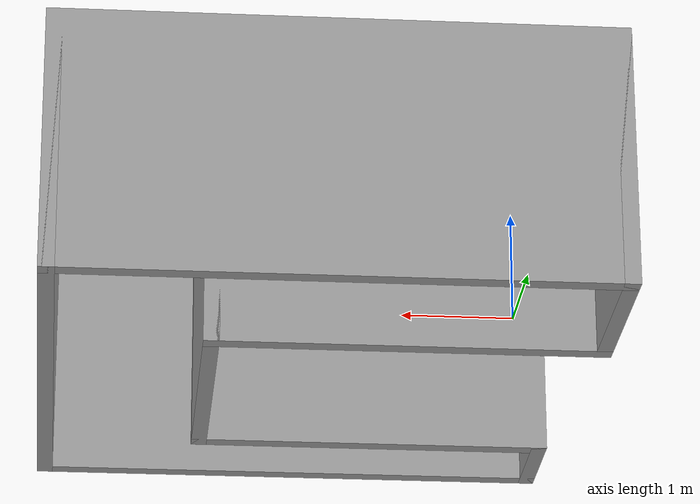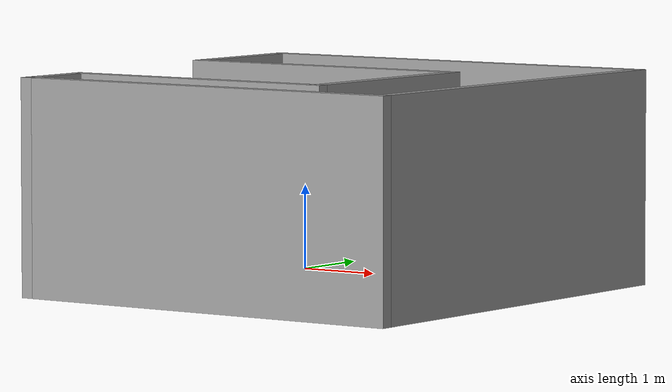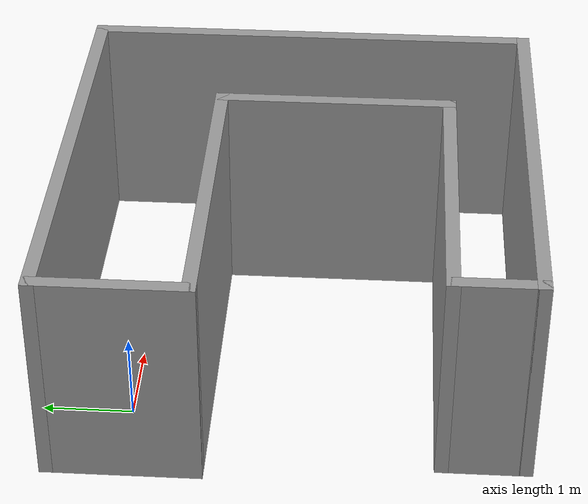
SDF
<?xml version='1.0'?>
<sdf version='1.6'>
  <model name='Untitled1.world'>
    <pose frame=''>1.60746 -1.74983 0 0 -0 0</pose>
    <link name='Wall_21'>
      <collision name='Wall_21_Collision'>
        <geometry>
          <box>
            <size>1.75 0.15 2.5</size>
          </box>
        </geometry>
        <pose frame=''>0 0 1.25 0 -0 0</pose>
      </collision>
      <visual name='Wall_21_Visual'>
        <pose frame=''>0 0 1.25 0 -0 0</pose>
        <geometry>
          <box>
            <size>1.75 0.15 2.5</size>
          </box>
        </geometry>
        <material>
          <script>
            <uri>file://media/materials/scripts/gazebo.material</uri>
            <name>Gazebo/Grey</name>
          </script>
          <ambient>1 1 1 1</ambient>
        </material>
        <meta>
          <layer>0</layer>
        </meta>
      </visual>
      <pose frame=''>-2.55 1.75 0 0 -0 -1.5708</pose>
    </link>
    <link name='Wall_23'>
      <collision name='Wall_23_Collision'>
        <geometry>
          <box>
            <size>5.25 0.15 2.5</size>
          </box>
        </geometry>
        <pose frame=''>0 0 1.25 0 -0 0</pose>
      </collision>
      <visual name='Wall_23_Visual'>
        <pose frame=''>0 0 1.25 0 -0 0</pose>
        <geometry>
          <box>
            <size>5.25 0.15 2.5</size>
          </box>
        </geometry>
        <material>
          <script>
            <uri>file://media/materials/scripts/gazebo.material</uri>
            <name>Gazebo/Grey</name>
          </script>
          <ambient>1 1 1 1</ambient>
        </material>
        <meta>
          <layer>0</layer>
        </meta>
      </visual>
      <pose frame=''>0 2.55 0 0 -0 0</pose>
    </link>
    <link name='Wall_24'>
      <collision name='Wall_24_Collision'>
        <geometry>
          <box>
            <size>5.25 0.15 2.5</size>
          </box>
        </geometry>
        <pose frame=''>0 0 1.25 0 -0 0</pose>
      </collision>
      <visual name='Wall_24_Visual'>
        <pose frame=''>0 0 1.25 0 -0 0</pose>
        <geometry>
          <box>
            <size>5.25 0.15 2.5</size>
          </box>
        </geometry>
        <material>
          <script>
            <uri>file://media/materials/scripts/gazebo.material</uri>
            <name>Gazebo/Grey</name>
          </script>
          <ambient>1 1 1 1</ambient>
        </material>
        <meta>
          <layer>0</layer>
        </meta>
      </visual>
      <pose frame=''>2.55 0 0 0 -0 -1.5708</pose>
    </link>
    <link name='Wall_25'>
      <collision name='Wall_25_Collision'>
        <geometry>
          <box>
            <size>5 0.15 2.5</size>
          </box>
        </geometry>
        <pose frame=''>0 0 1.25 0 -0 0</pose>
      </collision>
      <visual name='Wall_25_Visual'>
        <pose frame=''>0 0 1.25 0 -0 0</pose>
        <geometry>
          <box>
            <size>5 0.15 2.5</size>
          </box>
        </geometry>
        <material>
          <script>
            <uri>file://media/materials/scripts/gazebo.material</uri>
            <name>Gazebo/Grey</name>
          </script>
          <ambient>1 1 1 1</ambient>
        </material>
        <meta>
          <layer>0</layer>
        </meta>
      </visual>
      <pose frame=''>0.125 -2.55 0 0 -0 3.14159</pose>
    </link>
    <link name='Wall_26'>
      <collision name='Wall_26_Collision'>
        <geometry>
          <box>
            <size>0.15 0.15 2.5</size>
          </box>
        </geometry>
        <pose frame=''>0 0 1.25 0 -0 0</pose>
      </collision>
      <visual name='Wall_26_Visual'>
        <pose frame=''>0 0 1.25 0 -0 0</pose>
        <geometry>
          <box>
            <size>0.15 0.15 2.5</size>
          </box>
        </geometry>
        <material>
          <script>
            <uri>file://media/materials/scripts/gazebo.material</uri>
            <name>Gazebo/Grey</name>
          </script>
          <ambient>1 1 1 1</ambient>
        </material>
        <meta>
          <layer>0</layer>
        </meta>
      </visual>
      <pose frame=''>-2.3 -2.55 0 0 -0 0</pose>
    </link>
    <link name='Wall_28'>
      <collision name='Wall_28_Collision'>
        <geometry>
          <box>
            <size>3.75 0.15 2.5</size>
          </box>
        </geometry>
        <pose frame=''>0 0 1.25 0 -0 0</pose>
      </collision>
      <visual name='Wall_28_Visual'>
        <pose frame=''>0 0 1.25 0 -0 0</pose>
        <geometry>
          <box>
            <size>3.75 0.15 2.5</size>
          </box>
        </geometry>
        <material>
          <script>
            <uri>file://media/materials/scripts/gazebo.material</uri>
            <name>Gazebo/Grey</name>
          </script>
          <ambient>1 1 1 1</ambient>
        </material>
        <meta>
          <layer>0</layer>
        </meta>
      </visual>
      <pose frame=''>-0.75 0.95 0 0 -0 0</pose>
    </link>
    <link name='Wall_29'>
      <collision name='Wall_29_Collision'>
        <geometry>
          <box>
            <size>2.75 0.15 2.5</size>
          </box>
        </geometry>
        <pose frame=''>0 0 1.25 0 -0 0</pose>
      </collision>
      <visual name='Wall_29_Visual'>
        <pose frame=''>0 0 1.25 0 -0 0</pose>
        <geometry>
          <box>
            <size>2.75 0.15 2.5</size>
          </box>
        </geometry>
        <material>
          <script>
            <uri>file://media/materials/scripts/gazebo.material</uri>
            <name>Gazebo/Grey</name>
          </script>
          <ambient>1 1 1 1</ambient>
        </material>
        <meta>
          <layer>0</layer>
        </meta>
      </visual>
      <pose frame=''>1.05 -0.35 0 0 -0 -1.5708</pose>
    </link>
    <link name='Wall_30'>
      <collision name='Wall_30_Collision'>
        <geometry>
          <box>
            <size>3.5 0.15 2.5</size>
          </box>
        </geometry>
        <pose frame=''>0 0 1.25 0 -0 0</pose>
      </collision>
      <visual name='Wall_30_Visual'>
        <pose frame=''>0 0 1.25 0 -0 0</pose>
        <geometry>
          <box>
            <size>3.5 0.15 2.5</size>
          </box>
        </geometry>
        <material>
          <script>
            <uri>file://media/materials/scripts/gazebo.material</uri>
            <name>Gazebo/Grey</name>
          </script>
          <ambient>1 1 1 1</ambient>
        </material>
        <meta>
          <layer>0</layer>
        </meta>
      </visual>
      <pose frame=''>-0.625 -1.65 0 0 -0 3.14159</pose>
    </link>
    <link name='Wall_31'>
      <collision name='Wall_31_Collision'>
        <geometry>
          <box>
            <size>1.05 0.15 2.5</size>
          </box>
        </geometry>
        <pose frame=''>0 0 1.25 0 -0 0</pose>
      </collision>
      <visual name='Wall_31_Visual'>
        <pose frame=''>0 0 1.25 0 -0 0</pose>
        <geometry>
          <box>
            <size>1.05 0.15 2.5</size>
          </box>
        </geometry>
        <material>
          <script>
            <uri>file://media/materials/scripts/gazebo.material</uri>
            <name>Gazebo/Grey</name>
          </script>
          <ambient>1 1 1 1</ambient>
        </material>
        <meta>
          <layer>0</layer>
        </meta>
      </visual>
      <pose frame=''>-2.3 -2.1 0 0 -0 -1.5708</pose>
    </link>
    <static>1</static>
  </model>
</sdf>
